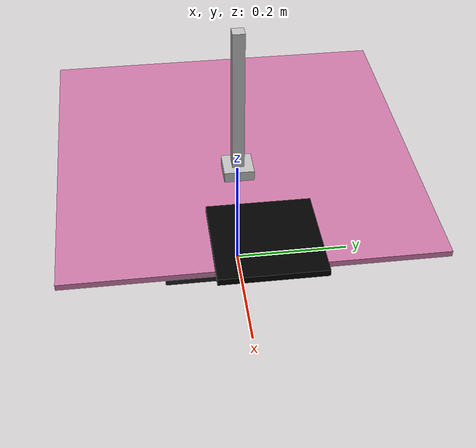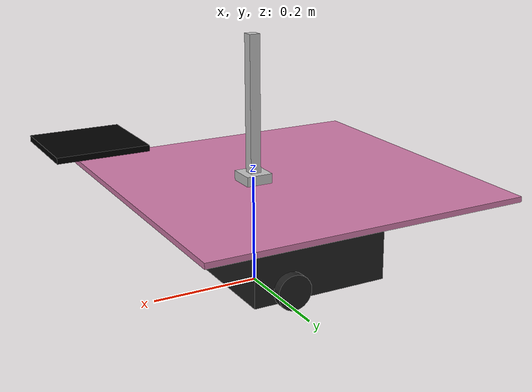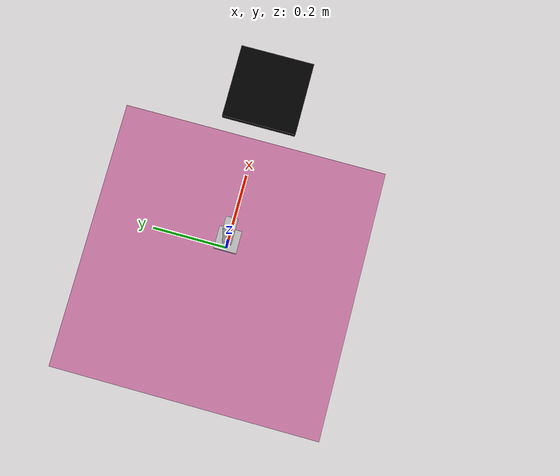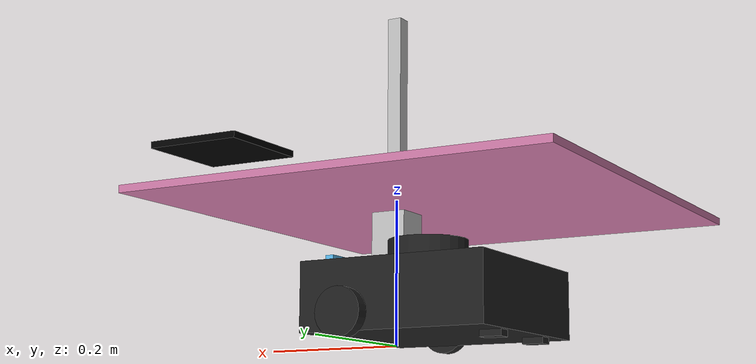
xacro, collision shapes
<?xml version="1.0"?>
<robot name="turtlebot3_waffle_with_arm" xmlns:xacro="http://www.ros.org/wiki/xacro">
  <xacro:property name="camera_pitch" value="-0.5"/>
  <xacro:include filename="$(find turtlebot3_description)/urdf/turtlebot3_waffle.urdf.xacro"/>

  <gazebo>
    <plugin name="differential_drive_controller" filename="libgazebo_ros_diff_drive.so">
      <rosNamespace>/</rosNamespace>
      <commandTopic>cmd_vel</commandTopic>
      <odometryTopic>odom</odometryTopic>
      <odometryFrame>odom</odometryFrame>
      <robotBaseFrame>base_footprint</robotBaseFrame>
      <leftJoint>wheel_left_joint</leftJoint>
      <rightJoint>wheel_right_joint</rightJoint>
      <wheelSeparation>0.287</wheelSeparation>
      <wheelDiameter>0.066</wheelDiameter>
      <publishOdomTF>true</publishOdomTF>
      <publishOdom>true</publishOdom>
      <publishWheelTF>true</publishWheelTF>
      <legacyMode>false</legacyMode>
      <odometrySource>world</odometrySource>
      <updateRate>1000</updateRate>
    </plugin>
  </gazebo>

  <gazebo>
    <plugin name="gazebo_ros_control" filename="libgazebo_ros_control.so">
      <robotNamespace>/</robotNamespace>
      <controlPeriod>0.001</controlPeriod>
      <robotSimType>gazebo_ros_control/DefaultRobotHWSim</robotSimType>
    </plugin>
  </gazebo>

  <link name="arm_base_link">
    <inertial>
      <mass value="0.5"/>
      <inertia ixx="0.001" ixy="0.0" ixz="0.0" iyy="0.001" iyz="0.0" izz="0.001"/>
    </inertial>
    <visual>
      <geometry><box size="0.05 0.05 0.2"/></geometry>
      <material name="silver"><color rgba="0.75 0.75 0.75 1"/></material>
    </visual>
    <collision>
      <geometry><box size="0.05 0.05 0.2"/></geometry>
    </collision>
  </link>
  <joint name="arm_base_joint" type="fixed">
    <parent link="base_link"/>
    <child link="arm_base_link"/>
    <origin xyz="0 0 0.1" rpy="0 0 0"/>
  </joint>

  <link name="arm_link">
    <inertial>
      <mass value="0.3"/>
      <inertia ixx="0.0005" ixy="0.0" ixz="0.0" iyy="0.0005" iyz="0.0" izz="0.0005"/>
    </inertial>
    <visual>
      <geometry><box size="0.02 0.02 0.3"/></geometry>
      <material name="silver"/>
    </visual>
    <collision>
      <geometry><box size="0.02 0.02 0.3"/></geometry>
    </collision>
  </link>
  <joint name="arm_joint" type="revolute">
    <parent link="arm_base_link"/>
    <child link="arm_link"/>
    <origin xyz="0 0 0.2" rpy="0 0 0"/>
    <axis xyz="0 1 0"/>
    <limit lower="-2.0" upper="2.0" effort="20" velocity="1"/> <!-- Increased effort -->
  </joint>

  <link name="suction_pad_link">
    <inertial>
      <mass value="0.02"/>
      <inertia ixx="0.00005" ixy="0.0" ixz="0.0" iyy="0.00005" iyz="0.0" izz="0.00005"/>
    </inertial>
    <visual>
      <geometry><box size="0.15 0.15 0.01"/></geometry>
      <material name="black"><color rgba="0 0 0 1"/></material>
    </visual>
    <collision>
      <geometry><box size="0.15 0.15 0.01"/></geometry>
      <surface>
        <friction>
          <ode>
            <mu>10.0</mu>  <!-- Max friction -->
            <mu2>10.0</mu2>
          </ode>
        </friction>
        <contact>
          <ode>
            <kp>50000.0</kp> <!-- Extremely stiff -->
            <kd>1000.0</kd>
          </ode>
        </contact>
      </surface>
    </collision>
  </link>
  <joint name="arm_to_suction" type="fixed">
    <parent link="arm_link"/>
    <child link="suction_pad_link"/>
    <origin xyz="0.3 0 -0.005" rpy="0 0 0"/>
  </joint>

  <link name="basket_link">
    <inertial>
      <mass value="0.2"/>
      <inertia ixx="0.0005" ixy="0.0" ixz="0.0" iyy="0.0005" iyz="0.0" izz="0.0005"/>
    </inertial>
    <visual>
      <geometry><box size="0.1 0.1 0.05"/></geometry>
      <material name="red"><color rgba="1 0 0 1"/></material>
    </visual>
    <collision>
      <geometry><box size="0.1 0.1 0.05"/></geometry>
    </collision>
  </link>
  <joint name="basket_joint" type="fixed">
    <parent link="base_link"/>
    <child link="basket_link"/>
    <origin xyz="0 0 0.05" rpy="0 0 0"/>
  </joint>

  <transmission name="arm_trans">
    <type>transmission_interface/SimpleTransmission</type>
    <joint name="arm_joint">
      <hardwareInterface>hardware_interface/PositionJointInterface</hardwareInterface>
    </joint>
    <actuator name="arm_motor">
      <hardwareInterface>hardware_interface/PositionJointInterface</hardwareInterface>
      <mechanicalReduction>1</mechanicalReduction>
    </actuator>
  </transmission>

  <gazebo reference="arm_joint">
    <implicitSpringDamper>true</implicitSpringDamper>
    <dampingFactor>1.0</dampingFactor> <!-- Increased damping -->
    <kp>500.0</kp> <!-- Stiffer joint -->
    <kd>50.0</kd>
  </gazebo>
</robot>

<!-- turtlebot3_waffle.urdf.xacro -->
<robot name="turtlebot3_waffle" xmlns:xacro="http://ros.org/wiki/xacro">
  <xacro:include filename="$(find prometheus_gazebo)/models/turtlebot3_description/urdf/common_properties.xacro"/>
  <xacro:include filename="$(find prometheus_gazebo)/models/turtlebot3_description/urdf/turtlebot3_waffle.gazebo.xacro"/>

  <xacro:property name="r200_cam_rgb_px" value="0.005"/>
  <xacro:property name="r200_cam_rgb_py" value="0.018"/>
  <xacro:property name="r200_cam_rgb_pz" value="0.013"/>
  <xacro:property name="r200_cam_depth_offset" value="0.01"/>

  <link name="base_footprint"/>

  <joint name="base_joint" type="fixed">
    <parent link="base_footprint"/>
    <child link="base_link" />
    <origin xyz="0 0 0.010" rpy="0 0 0"/>
  </joint>

  <link name="base_link">
    <visual>
      <origin xyz="-0.064 0 0.0" rpy="0 0 0"/>
      <geometry>
        <mesh filename="package://prometheus_gazebo/models/turtlebot3_description/meshes/bases/waffle_base.stl" scale="0.001 0.001 0.001"/>
      </geometry>
      <material name="light_black"/>
    </visual>

    <collision>
      <origin xyz="-0.064 0 0.047" rpy="0 0 0"/>
      <geometry>
        <box size="0.266 0.266 0.094"/>
      </geometry>
    </collision>

    <inertial>
      <origin xyz="0 0 0" rpy="0 0 0"/>
      <mass value="13.729096e+00"/>
      <inertia ixx="8.7002718e-03" ixy="-4.7576583e-05" ixz="1.1160499e-04"
               iyy="8.6195418e-03" iyz="-3.5422299e-06"
               izz="1.4612727e-02" />
    </inertial>
  </link>

  <joint name="wheel_left_joint" type="continuous">
    <parent link="base_link"/>
    <child link="wheel_left_link"/>
    <origin xyz="0.0 0.144 0.023" rpy="-1.57 0 0"/>
    <axis xyz="0 0 1"/>
  </joint>

  <link name="wheel_left_link">
    <visual>
      <origin xyz="0 0 0" rpy="1.57 0 0"/>
      <geometry>
        <mesh filename="package://prometheus_gazebo/models/turtlebot3_description/meshes/wheels/left_tire.stl" scale="0.001 0.001 0.001"/>
      </geometry>
      <material name="dark"/>
    </visual>

    <collision>
      <origin xyz="0 0 0" rpy="0 0 0"/>
      <geometry>
        <cylinder length="0.018" radius="0.033"/>
      </geometry>
    </collision>

    <inertial>
      <origin xyz="0 0 0" />
      <mass value="2.8498940e-02" />
      <inertia ixx="1.1175580e-05" ixy="-4.2369783e-11" ixz="-5.9381719e-09"
               iyy="1.1192413e-05" iyz="-1.4400107e-11"
               izz="2.0712558e-05" />
      </inertial>
  </link>

  <joint name="wheel_right_joint" type="continuous">
    <parent link="base_link"/>
    <child link="wheel_right_link"/>
    <origin xyz="0.0 -0.144 0.023" rpy="-1.57 0 0"/>
    <axis xyz="0 0 1"/>
  </joint>

  <link name="wheel_right_link">
    <visual>
      <origin xyz="0 0 0" rpy="1.57 0 0"/>
      <geometry>
        <mesh filename="package://prometheus_gazebo/models/turtlebot3_description/meshes/wheels/right_tire.stl" scale="0.001 0.001 0.001"/>
      </geometry>
      <material name="dark"/>
    </visual>

    <collision>
      <origin xyz="0 0 0" rpy="0 0 0"/>
      <geometry>
        <cylinder length="0.018" radius="0.033"/>
      </geometry>
    </collision>

    <inertial>
      <origin xyz="0 0 0" />
      <mass value="2.8498940e-02" />
      <inertia ixx="1.1175580e-05" ixy="-4.2369783e-11" ixz="-5.9381719e-09"
               iyy="1.1192413e-05" iyz="-1.4400107e-11"
               izz="2.0712558e-05" />
      </inertial>
  </link>

  <joint name="caster_back_right_joint" type="fixed">
    <parent link="base_link"/>
    <child link="caster_back_right_link"/>
    <origin xyz="-0.177 -0.064 -0.004" rpy="-1.57 0 0"/>
  </joint>

  <link name="caster_back_right_link">
    <collision>
      <origin xyz="0 0.001 0" rpy="0 0 0"/>
      <geometry>
        <box size="0.030 0.009 0.020"/>
      </geometry>
    </collision>

    <inertial>
      <origin xyz="0 0 0" />
      <mass value="0.005" />
      <inertia ixx="0.001" ixy="0.0" ixz="0.0"
               iyy="0.001" iyz="0.0"
               izz="0.001" />
    </inertial>
  </link>

  <joint name="caster_back_left_joint" type="fixed">
    <parent link="base_link"/>
    <child link="caster_back_left_link"/>
    <origin xyz="-0.177 0.064 -0.004" rpy="-1.57 0 0"/>
  </joint>

  <link name="caster_back_left_link">
    <collision>
      <origin xyz="0 0.001 0" rpy="0 0 0"/>
      <geometry>
        <box size="0.030 0.009 0.020"/>
      </geometry>
    </collision>

    <inertial>
      <origin xyz="0 0 0" />
      <mass value="0.005" />
      <inertia ixx="0.001" ixy="0.0" ixz="0.0"
               iyy="0.001" iyz="0.0"
               izz="0.001" />
    </inertial>
  </link>

  <joint name="qrboard_joint" type="fixed">
    <child link="qrboard_link"/>
    <parent link="base_link"/>
    <origin xyz="0.0 0 0.13" rpy="0 0 0"/>
  </joint>

 <link name="qrboard_link">
    <visual>
      <origin xyz="-0.064 0 0.0" rpy="0 0 0"/>
      <geometry>
        <box size="0.6 0.6 0.01"/>
      </geometry>
    </visual>
    <collision>
      <origin xyz="-0.064 0 0.047" rpy="0 0 0"/>
      <geometry>
        <box size="0.6 0.6 0.01"/>
      </geometry>
    </collision>

    <inertial>
      <origin xyz="0 0 0" rpy="0 0 0"/>
      <mass value="0.01"/>
      <inertia ixx="0.0008611666666666669" ixy="0" ixz="0"
               iyy="0.0008611666666666669" iyz="0"
               izz="0.0008611666666666669" />
      </inertial>
  </link>

  <gazebo reference="qrboard_link">
      <material>Cube/QRCode</material>
  </gazebo>

  <joint name="imu_joint" type="fixed">
    <parent link="base_link"/>
    <child link="imu_link"/>
    <origin xyz="0.0 0 0.068" rpy="0 0 0"/>
  </joint>

  <link name="imu_link"/>

  <joint name="scan_joint" type="fixed">
    <parent link="base_link"/>
    <child link="base_scan"/>
    <origin xyz="-0.064 0 0.122" rpy="0 0 0"/>
  </joint>

  <link name="base_scan">
    <visual>
      <origin xyz="0 0 0" rpy="0 0 0"/>
      <geometry>
        <mesh filename="package://prometheus_gazebo/models/turtlebot3_description/meshes/sensors/lds.stl" scale="0.001 0.001 0.001"/>
      </geometry>
      <material name="dark"/>
    </visual>

    <collision>
      <origin xyz="0.015 0 -0.0065" rpy="0 0 0"/>
      <geometry>
        <cylinder length="0.0315" radius="0.055"/>
      </geometry>
    </collision>

    <inertial>
      <mass value="0.114" />
      <origin xyz="0 0 0" />
      <inertia ixx="0.001" ixy="0.0" ixz="0.0"
               iyy="0.001" iyz="0.0"
               izz="0.001" />
    </inertial>
  </link>

  <joint name="camera_joint" type="fixed">
    <origin xyz="0.064 -0.065 0.094" rpy="0 0 0"/>
    <parent link="base_link"/>
    <child link="camera_link"/>
  </joint>

  <link name="camera_link">
    <visual>
     <origin xyz="0 0 0" rpy="1.57 0 1.57"/>
      <geometry>
       <mesh filename="package://prometheus_gazebo/models/turtlebot3_description/meshes/sensors/r200.dae" />
      </geometry>
    </visual>
    <collision>
      <origin xyz="0.003 0.065 0.007" rpy="0 0 0"/>
      <geometry>
        <box size="0.012 0.132 0.020"/>
      </geometry>
    </collision>

    <!-- This inertial field needs doesn't contain reliable data!! -->
  </link>

  <joint name="camera_rgb_joint" type="fixed">
    <origin xyz="${r200_cam_rgb_px} ${r200_cam_rgb_py} ${r200_cam_rgb_pz}" rpy="0 0 0"/>
    <parent link="camera_link"/>
    <child link="camera_rgb_frame"/>
  </joint>
  <link name="camera_rgb_frame"/>

  <joint name="camera_rgb_optical_joint" type="fixed">
    <origin xyz="0 0 0" rpy="-1.57 0 -1.57"/>
    <parent link="camera_rgb_frame"/>
    <child link="camera_rgb_optical_frame"/>
  </joint>
  <link name="camera_rgb_optical_frame"/>

  <joint name="camera_depth_joint" type="fixed">
    <origin xyz="${r200_cam_rgb_px} ${r200_cam_rgb_py + r200_cam_depth_offset} ${r200_cam_rgb_pz}" rpy="0 0 0"/>
    <parent link="camera_link"/>
    <child link="camera_depth_frame"/>
  </joint>
  <link name="camera_depth_frame"/>

  <joint name="camera_depth_optical_joint" type="fixed">
    <origin xyz="0 0 0" rpy="-1.57 0 -1.57"/>
    <parent link="camera_depth_frame"/>
    <child link="camera_depth_optical_frame"/>
  </joint>
  <link name="camera_depth_optical_frame"/>

</robot>
